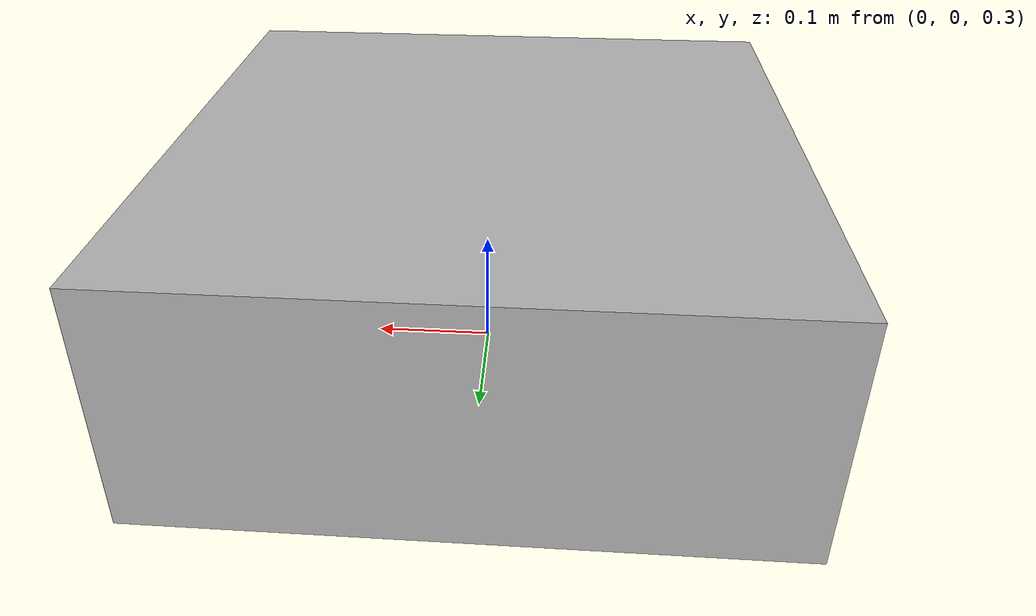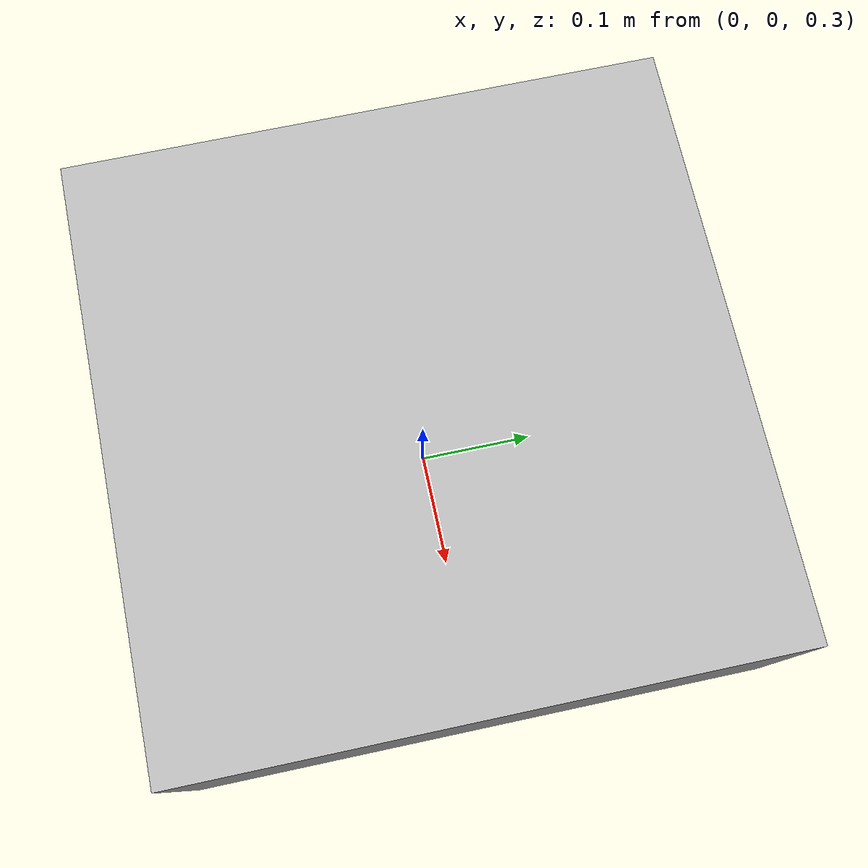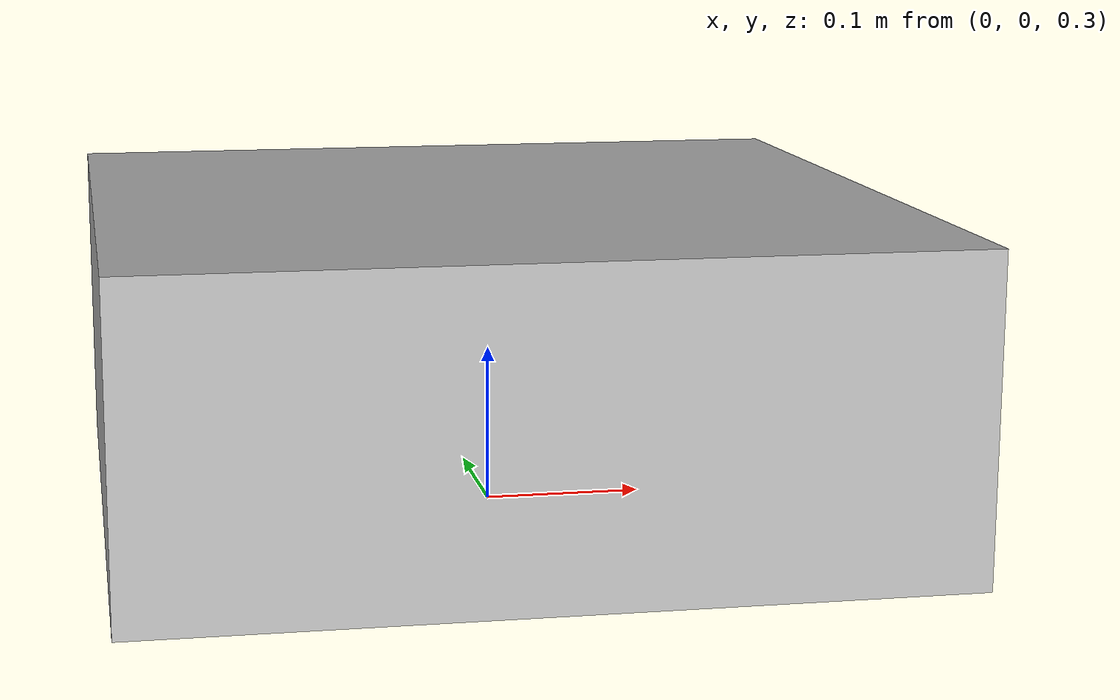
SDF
<?xml version="1.0" ?><sdf version="1.8"><model name="robot_con_camara"><static>false</static><link name="chassis"><pose>0 0 0.4 0 0 0</pose><visual name="visual"><geometry><box><size>0.5 0.5 0.2</size></box></geometry></visual><sensor name="camera" type="camera"><pose>0.25 0 0.1 0 0 0</pose><camera><horizontal_fov>1.047</horizontal_fov><image><width>640</width><height>480</height></image></camera><always_on>1</always_on><update_rate>30</update_rate><topic>camera/image_raw</topic></sensor></link><plugin filename="gz-sim-sensors-system" name="gz::sim::systems::Sensors"></plugin></model></sdf>
